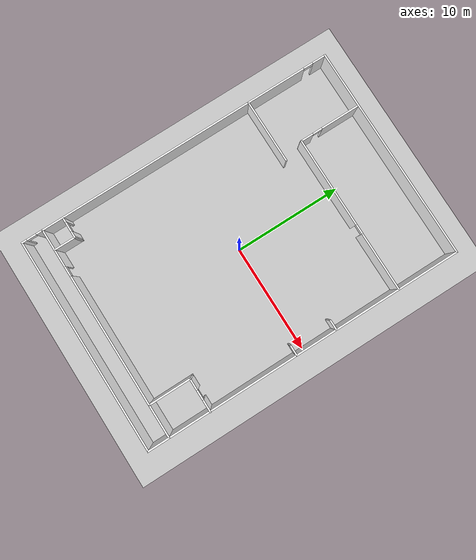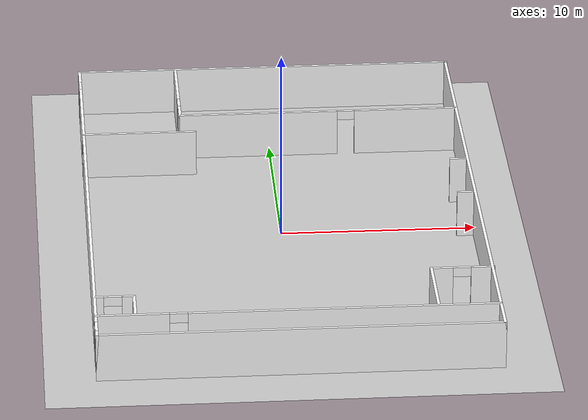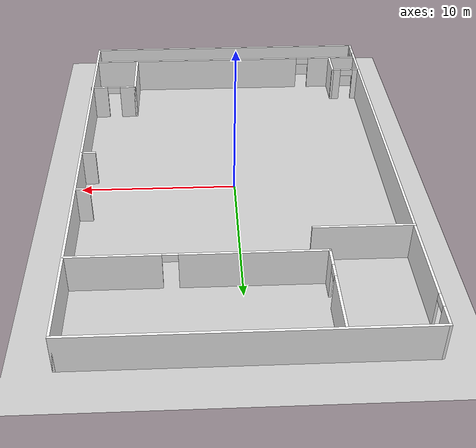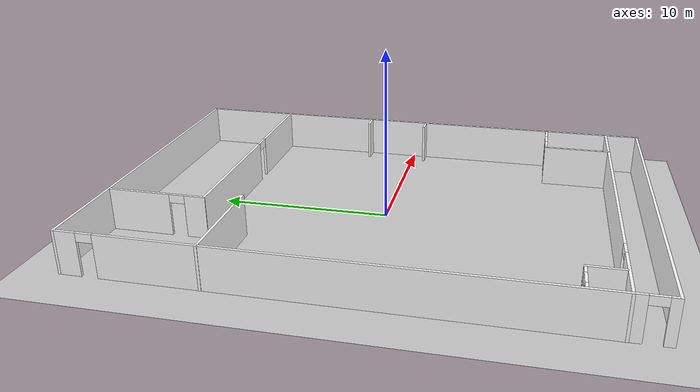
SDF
<?xml version="1.0"?>

<!-- 该模型用于测试 -->
<sdf version='1.11'>
  <world name='test'>

    <!-- 环境配置 -->
    <scene>
      <ambient>1 1 1 1</ambient>
      <background>0.800000012 0.800000012 0.800000012 1</background>
      <sky></sky>
      <shadows>true</shadows>
    </scene>
    <gravity>0 0 -9.8000000000000007</gravity>
    <magnetic_field>5.5644999999999998e-06 2.2875799999999999e-05 -4.2388400000000002e-05</magnetic_field>
    <atmosphere type='adiabatic'/>
    <physics type='ode'>
      <max_step_size>0.001</max_step_size>
      <real_time_factor>1</real_time_factor>
      <real_time_update_rate>1000</real_time_update_rate>
    </physics>

    <!-- 加载ground -->
    <include>
      <uri>model://ground_plane</uri>
      <name>ground_plane</name>
      <pose>0 0 0 0 0 0</pose>
    </include>

    <!-- 加载room模型 -->
    <include>
      <uri>model://room_1</uri>
      <name>room_1</name>
      <pose>0 0 0 0 0 0</pose>
    </include>

    <!-- 光源 -->
    <light name='sun' type='directional'>
      <pose>0 0 10 0 0 0</pose>
      <cast_shadows>true</cast_shadows>
      <intensity>1</intensity>
      <direction>-0.5 0.1 -0.9</direction>
      <diffuse>0.8 0.8 0.8 1</diffuse>
      <specular>0.2 0.2 0.2 1</specular>
      <attenuation>
        <range>1000</range>
        <linear>0.01</linear>
        <constant>0.90000000000000002</constant>
        <quadratic>0.001</quadratic>
      </attenuation>
    </light>

    <!-- 核心系统插件 -->
    <plugin filename="gz-sim-physics-system" name="gz::sim::systems::Physics">
    </plugin>

    <plugin filename="gz-sim-user-commands-system" name="gz::sim::systems::UserCommands">
    </plugin>

    <plugin filename="gz-sim-scene-broadcaster-system" name="gz::sim::systems::SceneBroadcaster">
    </plugin>

    <plugin filename="gz-sim-sensors-system" name="gz::sim::systems::Sensors">
      <render_engine>ogre2</render_engine>
    </plugin>

    <plugin filename="gz-sim-imu-system" name="gz::sim::systems::Imu">
    </plugin>

  </world>
</sdf>

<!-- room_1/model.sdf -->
<sdf version='1.11'>
  <model name='room_1'>
    <pose>-2.13091 0.288813 0 0 -0 0</pose>
    <link name='Wall_26'>
      <pose>-9.94011 0 0 0 -0 -1.5708</pose>
      <visual name='Wall_26_Visual_0'>
        <pose>-14.3351 0 1.25 0 -0 0</pose>
        <geometry>
          <box>
            <size>1.32984 0.15 2.5</size>
          </box>
        </geometry>
        <material>
          <ambient>1 1 1 1</ambient>
          <diffuse>1 1 1 1</diffuse>
          <specular>0.1 0.1 0.1 1</specular>
          <pbr>
            <metal>
              <albedo_map>/home/netlab/littletank/model/zyz_material/red_wall.png</albedo_map>
            </metal>
          </pbr>
        </material>
        <meta>
          <layer>0</layer>
        </meta>
      </visual>
      <collision name='Wall_26_Collision_0'>
        <geometry>
          <box>
            <size>1.32984 0.15 2.5</size>
          </box>
        </geometry>
        <pose>-14.3351 0 1.25 0 -0 0</pose>
      </collision>
      <visual name='Wall_26_Visual_1'>
        <pose>0.406322 0 1.25 0 -0 0</pose>
        <geometry>
          <box>
            <size>26.353 0.15 2.5</size>
          </box>
        </geometry>
        <material>
          <ambient>1 1 1 1</ambient>
          <diffuse>1 1 1 1</diffuse>
          <specular>0.1 0.1 0.1 1</specular>
          <pbr>
            <metal>
              <albedo_map>/home/netlab/littletank/model/zyz_material/red_wall.png</albedo_map>
            </metal>
          </pbr>
        </material>
        <meta>
          <layer>0</layer>
        </meta>
      </visual>
      <collision name='Wall_26_Collision_1'>
        <geometry>
          <box>
            <size>26.353 0.15 2.5</size>
          </box>
        </geometry>
        <pose>0.406322 0 1.25 0 -0 0</pose>
      </collision>
      <visual name='Wall_26_Visual_2'>
        <pose>14.7414 0 1.25 0 -0 0</pose>
        <geometry>
          <box>
            <size>0.517201 0.15 2.5</size>
          </box>
        </geometry>
        <material>
          <ambient>1 1 1 1</ambient>
          <diffuse>1 1 1 1</diffuse>
          <specular>0.1 0.1 0.1 1</specular>
          <pbr>
            <metal>
              <albedo_map>/home/netlab/littletank/model/zyz_material/red_wall.png</albedo_map>
            </metal>
          </pbr>
        </material>
        <meta>
          <layer>0</layer>
        </meta>
      </visual>
      <collision name='Wall_26_Collision_2'>
        <geometry>
          <box>
            <size>0.517201 0.15 2.5</size>
          </box>
        </geometry>
        <pose>14.7414 0 1.25 0 -0 0</pose>
      </collision>
      <visual name='Wall_26_Visual_3'>
        <pose>-13.2202 0 2.25 0 -0 0</pose>
        <geometry>
          <box>
            <size>0.9 0.15 0.5</size>
          </box>
        </geometry>
        <material>
          <ambient>1 1 1 1</ambient>
          <diffuse>1 1 1 1</diffuse>
          <specular>0.1 0.1 0.1 1</specular>
          <pbr>
            <metal>
              <albedo_map>/home/netlab/littletank/model/zyz_material/red_wall.png</albedo_map>
            </metal>
          </pbr>
        </material>
        <meta>
          <layer>0</layer>
        </meta>
      </visual>
      <collision name='Wall_26_Collision_3'>
        <geometry>
          <box>
            <size>0.9 0.15 0.5</size>
          </box>
        </geometry>
        <pose>-13.2202 0 2.25 0 -0 0</pose>
      </collision>
      <visual name='Wall_26_Visual_4'>
        <pose>14.0328 0 2.25 0 -0 0</pose>
        <geometry>
          <box>
            <size>0.9 0.15 0.5</size>
          </box>
        </geometry>
        <material>
          <ambient>1 1 1 1</ambient>
          <diffuse>1 1 1 1</diffuse>
          <specular>0.1 0.1 0.1 1</specular>
          <pbr>
            <metal>
              <albedo_map>/home/netlab/littletank/model/zyz_material/red_wall.png</albedo_map>
            </metal>
          </pbr>
        </material>
        <meta>
          <layer>0</layer>
        </meta>
      </visual>
      <collision name='Wall_26_Collision_4'>
        <geometry>
          <box>
            <size>0.9 0.15 0.5</size>
          </box>
        </geometry>
        <pose>14.0328 0 2.25 0 -0 0</pose>
      </collision>
    </link>
    <link name='Wall_28'>
      <collision name='Wall_28_Collision'>
        <geometry>
          <box>
            <size>20 0.15 2.5</size>
          </box>
        </geometry>
        <pose>0 0 1.25 0 -0 0</pose>
      </collision>
      <visual name='Wall_28_Visual'>
        <pose>0 0 1.25 0 -0 0</pose>
        <geometry>
          <box>
            <size>20 0.15 2.5</size>
          </box>
        </geometry>
        <material>
          <ambient>1 1 1 1</ambient>
          <diffuse>1 1 1 1</diffuse>
          <specular>0.1 0.1 0.1 1</specular>
          <pbr>
            <metal>
              <albedo_map>/home/netlab/littletank/model/zyz_material/red_wall.png</albedo_map>
            </metal>
          </pbr>
        </material>
        <meta>
          <layer>0</layer>
        </meta>
      </visual>
      <pose>-0.015112 -14.925 0 0 -0 0</pose>
    </link>
    <link name='Wall_30'>
      <collision name='Wall_30_Collision'>
        <geometry>
          <box>
            <size>20 0.15 2.5</size>
          </box>
        </geometry>
        <pose>0 0 1.25 0 -0 0</pose>
      </collision>
      <visual name='Wall_30_Visual'>
        <pose>0 0 1.25 0 -0 0</pose>
        <geometry>
          <box>
            <size>20 0.15 2.5</size>
          </box>
        </geometry>
        <material>
          <ambient>1 1 1 1</ambient>
          <diffuse>1 1 1 1</diffuse>
          <specular>0.1 0.1 0.1 1</specular>
          <pbr>
            <metal>
              <albedo_map>/home/netlab/littletank/model/zyz_material/red_wall.png</albedo_map>
            </metal>
          </pbr>
        </material>
        <meta>
          <layer>0</layer>
        </meta>
      </visual>
      <pose>-0.015112 14.925 0 0 -0 0</pose>
    </link>
    <link name='Wall_32'>
      <collision name='Wall_32_Collision'>
        <geometry>
          <box>
            <size>30 0.15 2.5</size>
          </box>
        </geometry>
        <pose>0 0 1.25 0 -0 0</pose>
      </collision>
      <visual name='Wall_32_Visual'>
        <pose>0 0 1.25 0 -0 0</pose>
        <geometry>
          <box>
            <size>30 0.15 2.5</size>
          </box>
        </geometry>
        <material>
          <ambient>1 1 1 1</ambient>
          <diffuse>1 1 1 1</diffuse>
          <specular>0.1 0.1 0.1 1</specular>
          <pbr>
            <metal>
              <albedo_map>/home/netlab/littletank/model/zyz_material/red_wall.png</albedo_map>
            </metal>
          </pbr>
        </material>
        <meta>
          <layer>0</layer>
        </meta>
      </visual>
      <pose>9.90989 0 0 0 -0 1.5708</pose>
    </link>
    <link name='Wall_34'>
      <pose>2.56186 9.19197 0 0 -0 3.14159</pose>
      <visual name='Wall_34_Visual_0'>
        <pose>-4.65024 0 1.25 0 -0 0</pose>
        <geometry>
          <box>
            <size>5.44952 0.15 2.5</size>
          </box>
        </geometry>
        <material>
          <ambient>1 1 1 1</ambient>
          <diffuse>1 1 1 1</diffuse>
          <specular>0.1 0.1 0.1 1</specular>
          <pbr>
            <metal>
              <albedo_map>/home/netlab/littletank/model/zyz_material/red_wall.png</albedo_map>
            </metal>
          </pbr>
        </material>
        <meta>
          <layer>0</layer>
        </meta>
      </visual>
      <collision name='Wall_34_Collision_0'>
        <geometry>
          <box>
            <size>5.44952 0.15 2.5</size>
          </box>
        </geometry>
        <pose>-4.65024 0 1.25 0 -0 0</pose>
      </collision>
      <visual name='Wall_34_Visual_1'>
        <pose>3.17476 0 1.25 0 -0 0</pose>
        <geometry>
          <box>
            <size>8.40048 0.15 2.5</size>
          </box>
        </geometry>
        <material>
          <ambient>1 1 1 1</ambient>
          <diffuse>1 1 1 1</diffuse>
          <specular>0.1 0.1 0.1 1</specular>
          <pbr>
            <metal>
              <albedo_map>/home/netlab/littletank/model/zyz_material/red_wall.png</albedo_map>
            </metal>
          </pbr>
        </material>
        <meta>
          <layer>0</layer>
        </meta>
      </visual>
      <collision name='Wall_34_Collision_1'>
        <geometry>
          <box>
            <size>8.40048 0.15 2.5</size>
          </box>
        </geometry>
        <pose>3.17476 0 1.25 0 -0 0</pose>
      </collision>
      <visual name='Wall_34_Visual_2'>
        <pose>-1.47548 0 2.25 0 -0 0</pose>
        <geometry>
          <box>
            <size>0.9 0.15 0.5</size>
          </box>
        </geometry>
        <material>
          <ambient>1 1 1 1</ambient>
          <diffuse>1 1 1 1</diffuse>
          <specular>0.1 0.1 0.1 1</specular>
          <pbr>
            <metal>
              <albedo_map>/home/netlab/littletank/model/zyz_material/red_wall.png</albedo_map>
            </metal>
          </pbr>
        </material>
        <meta>
          <layer>0</layer>
        </meta>
      </visual>
      <collision name='Wall_34_Collision_2'>
        <geometry>
          <box>
            <size>0.9 0.15 0.5</size>
          </box>
        </geometry>
        <pose>-1.47548 0 2.25 0 -0 0</pose>
      </collision>
    </link>
    <link name='Wall_36'>
      <pose>-4.77332 11.992 0 0 -0 1.5708</pose>
      <visual name='Wall_36_Visual_0'>
        <pose>-2.26207 0 1.25 0 -0 0</pose>
        <geometry>
          <box>
            <size>1.22585 0.15 2.5</size>
          </box>
        </geometry>
        <material>
          <ambient>1 1 1 1</ambient>
          <diffuse>1 1 1 1</diffuse>
          <specular>0.1 0.1 0.1 1</specular>
          <pbr>
            <metal>
              <albedo_map>/home/netlab/littletank/model/zyz_material/red_wall.png</albedo_map>
            </metal>
          </pbr>
        </material>
        <meta>
          <layer>0</layer>
        </meta>
      </visual>
      <collision name='Wall_36_Collision_0'>
        <geometry>
          <box>
            <size>1.22585 0.15 2.5</size>
          </box>
        </geometry>
        <pose>-2.26207 0 1.25 0 -0 0</pose>
      </collision>
      <visual name='Wall_36_Visual_1'>
        <pose>1.06292 0 1.25 0 -0 0</pose>
        <geometry>
          <box>
            <size>3.62415 0.15 2.5</size>
          </box>
        </geometry>
        <material>
          <ambient>1 1 1 1</ambient>
          <diffuse>1 1 1 1</diffuse>
          <specular>0.1 0.1 0.1 1</specular>
          <pbr>
            <metal>
              <albedo_map>/home/netlab/littletank/model/zyz_material/red_wall.png</albedo_map>
            </metal>
          </pbr>
        </material>
        <meta>
          <layer>0</layer>
        </meta>
      </visual>
      <collision name='Wall_36_Collision_1'>
        <geometry>
          <box>
            <size>3.62415 0.15 2.5</size>
          </box>
        </geometry>
        <pose>1.06292 0 1.25 0 -0 0</pose>
      </collision>
      <visual name='Wall_36_Visual_2'>
        <pose>-1.19915 0 2.25 0 -0 0</pose>
        <geometry>
          <box>
            <size>0.9 0.15 0.5</size>
          </box>
        </geometry>
        <material>
          <ambient>1 1 1 1</ambient>
          <diffuse>1 1 1 1</diffuse>
          <specular>0.1 0.1 0.1 1</specular>
          <pbr>
            <metal>
              <albedo_map>/home/netlab/littletank/model/zyz_material/red_wall.png</albedo_map>
            </metal>
          </pbr>
        </material>
        <meta>
          <layer>0</layer>
        </meta>
      </visual>
      <collision name='Wall_36_Collision_2'>
        <geometry>
          <box>
            <size>0.9 0.15 0.5</size>
          </box>
        </geometry>
        <pose>-1.19915 0 2.25 0 -0 0</pose>
      </collision>
    </link>
    <link name='Wall_38'>
      <collision name='Wall_38_Collision'>
        <geometry>
          <box>
            <size>2 0.15 2.5</size>
          </box>
        </geometry>
        <pose>0 0 1.25 0 -0 0</pose>
      </collision>
      <visual name='Wall_38_Visual'>
        <pose>0 0 1.25 0 -0 0</pose>
        <geometry>
          <box>
            <size>2 0.15 2.5</size>
          </box>
        </geometry>
        <material>
          <ambient>1 1 1 1</ambient>
          <diffuse>1 1 1 1</diffuse>
          <specular>0.1 0.1 0.1 1</specular>
          <pbr>
            <metal>
              <albedo_map>/home/netlab/littletank/model/zyz_material/grey_wall.png</albedo_map>
            </metal>
          </pbr>
        </material>
        <meta>
          <layer>0</layer>
        </meta>
      </visual>
      <pose>-7.99563 -11.9358 0 0 -0 1.5708</pose>
    </link>
    <link name='Wall_40'>
      <pose>-0.031192 -12.9552 0 0 -0 0</pose>
      <visual name='Wall_40_Visual_0'>
        <pose>-8.15511 0 1.25 0 -0 0</pose>
        <geometry>
          <box>
            <size>3.68977 0.15 2.5</size>
          </box>
        </geometry>
        <material>
          <ambient>1 1 1 1</ambient>
          <diffuse>1 1 1 1</diffuse>
          <specular>0.1 0.1 0.1 1</specular>
          <pbr>
            <metal>
              <albedo_map>/home/netlab/littletank/model/zyz_material/red_wall.png</albedo_map>
            </metal>
          </pbr>
        </material>
        <meta>
          <layer>0</layer>
        </meta>
      </visual>
      <collision name='Wall_40_Collision_0'>
        <geometry>
          <box>
            <size>3.68977 0.15 2.5</size>
          </box>
        </geometry>
        <pose>-8.15511 0 1.25 0 -0 0</pose>
      </collision>
      <visual name='Wall_40_Visual_1'>
        <pose>2.29489 0 1.25 0 -0 0</pose>
        <geometry>
          <box>
            <size>15.4102 0.15 2.5</size>
          </box>
        </geometry>
        <material>
          <ambient>1 1 1 1</ambient>
          <diffuse>1 1 1 1</diffuse>
          <specular>0.1 0.1 0.1 1</specular>
          <pbr>
            <metal>
              <albedo_map>/home/netlab/littletank/model/zyz_material/red_wall.png</albedo_map>
            </metal>
          </pbr>
        </material>
        <meta>
          <layer>0</layer>
        </meta>
      </visual>
      <collision name='Wall_40_Collision_1'>
        <geometry>
          <box>
            <size>15.4102 0.15 2.5</size>
          </box>
        </geometry>
        <pose>2.29489 0 1.25 0 -0 0</pose>
      </collision>
      <visual name='Wall_40_Visual_2'>
        <pose>-5.86023 0 2.25 0 -0 0</pose>
        <geometry>
          <box>
            <size>0.9 0.15 0.5</size>
          </box>
        </geometry>
        <material>
          <ambient>1 1 1 1</ambient>
          <diffuse>1 1 1 1</diffuse>
          <specular>0.1 0.1 0.1 1</specular>
          <pbr>
            <metal>
              <albedo_map>/home/netlab/littletank/model/zyz_material/red_wall.png</albedo_map>
            </metal>
          </pbr>
        </material>
        <meta>
          <layer>0</layer>
        </meta>
      </visual>
      <collision name='Wall_40_Collision_2'>
        <geometry>
          <box>
            <size>0.9 0.15 0.5</size>
          </box>
        </geometry>
        <pose>-5.86023 0 2.25 0 -0 0</pose>
      </collision>
    </link>
    <link name='Wall_42'>
      <pose>-8.92063 -11.0108 0 0 -0 3.14159</pose>
      <visual name='Wall_42_Visual_0'>
        <pose>-0.665755 0 1.25 0 -0 0</pose>
        <geometry>
          <box>
            <size>0.668489 0.15 2.5</size>
          </box>
        </geometry>
        <material>
          <ambient>1 1 1 1</ambient>
          <diffuse>1 1 1 1</diffuse>
          <specular>0.1 0.1 0.1 1</specular>
          <pbr>
            <metal>
              <albedo_map>/home/netlab/littletank/model/zyz_material/grey_wall.png</albedo_map>
            </metal>
          </pbr>
        </material>
        <meta>
          <layer>0</layer>
        </meta>
      </visual>
      <collision name='Wall_42_Collision_0'>
        <geometry>
          <box>
            <size>0.668489 0.15 2.5</size>
          </box>
        </geometry>
        <pose>-0.665755 0 1.25 0 -0 0</pose>
      </collision>
      <visual name='Wall_42_Visual_1'>
        <pose>0.784245 0 1.25 0 -0 0</pose>
        <geometry>
          <box>
            <size>0.431511 0.15 2.5</size>
          </box>
        </geometry>
        <material>
          <ambient>1 1 1 1</ambient>
          <diffuse>1 1 1 1</diffuse>
          <specular>0.1 0.1 0.1 1</specular>
          <pbr>
            <metal>
              <albedo_map>/home/netlab/littletank/model/zyz_material/grey_wall.png</albedo_map>
            </metal>
          </pbr>
        </material>
        <meta>
          <layer>0</layer>
        </meta>
      </visual>
      <collision name='Wall_42_Collision_1'>
        <geometry>
          <box>
            <size>0.431511 0.15 2.5</size>
          </box>
        </geometry>
        <pose>0.784245 0 1.25 0 -0 0</pose>
      </collision>
      <visual name='Wall_42_Visual_2'>
        <pose>0.118489 0 2.25 0 -0 0</pose>
        <geometry>
          <box>
            <size>0.9 0.15 0.5</size>
          </box>
        </geometry>
        <material>
          <ambient>1 1 1 1</ambient>
          <diffuse>1 1 1 1</diffuse>
          <specular>0.1 0.1 0.1 1</specular>
          <pbr>
            <metal>
              <albedo_map>/home/netlab/littletank/model/zyz_material/grey_wall.png</albedo_map>
            </metal>
          </pbr>
        </material>
        <meta>
          <layer>0</layer>
        </meta>
      </visual>
      <collision name='Wall_42_Collision_2'>
        <geometry>
          <box>
            <size>0.9 0.15 0.5</size>
          </box>
        </geometry>
        <pose>0.118489 0 2.25 0 -0 0</pose>
      </collision>
    </link>
    <link name='Wall_46'>
      <collision name='Wall_46_Collision'>
        <geometry>
          <box>
            <size>4 0.15 2.5</size>
          </box>
        </geometry>
        <pose>0 0 1.25 0 -0 0</pose>
      </collision>
      <visual name='Wall_46_Visual'>
        <pose>0 0 1.25 0 -0 0</pose>
        <geometry>
          <box>
            <size>4 0.15 2.5</size>
          </box>
        </geometry>
        <material>
          <ambient>1 1 1 1</ambient>
          <diffuse>1 1 1 1</diffuse>
          <specular>0.1 0.1 0.1 1</specular>
          <pbr>
            <metal>
              <albedo_map>/home/netlab/littletank/model/zyz_material/brick_wall.png</albedo_map>
            </metal>
          </pbr>
        </material>
        <meta>
          <layer>0</layer>
        </meta>
      </visual>
      <pose>6.85619 -11.0034 0 0 -0 1.5708</pose>
    </link>
    <link name='Wall_48'>
      <collision name='Wall_48_Collision'>
        <geometry>
          <box>
            <size>1 0.15 2.5</size>
          </box>
        </geometry>
        <pose>0 0 1.25 0 -0 0</pose>
      </collision>
      <visual name='Wall_48_Visual'>
        <pose>0 0 1.25 0 -0 0</pose>
        <geometry>
          <box>
            <size>1 0.15 2.5</size>
          </box>
        </geometry>
        <material>
          <ambient>1 1 1 1</ambient>
          <diffuse>1 1 1 1</diffuse>
          <specular>0.1 0.1 0.1 1</specular>
          <pbr>
            <metal>
              <albedo_map>/home/netlab/littletank/model/zyz_material/grey_wall.png</albedo_map>
            </metal>
          </pbr>
        </material>
        <meta>
          <layer>0</layer>
        </meta>
      </visual>
      <pose>9.48123 3.07607 0 0 -0 3.14159</pose>
    </link>
    <link name='Wall_52'>
      <collision name='Wall_52_Collision'>
        <geometry>
          <box>
            <size>1 0.15 2.5</size>
          </box>
        </geometry>
        <pose>0 0 1.25 0 -0 0</pose>
      </collision>
      <visual name='Wall_52_Visual'>
        <pose>0 0 1.25 0 -0 0</pose>
        <geometry>
          <box>
            <size>1 0.15 2.5</size>
          </box>
        </geometry>
        <material>
          <ambient>1 1 1 1</ambient>
          <diffuse>1 1 1 1</diffuse>
          <specular>0.1 0.1 0.1 1</specular>
          <pbr>
            <metal>
              <albedo_map>/home/netlab/littletank/model/zyz_material/grey_wall.png</albedo_map>
            </metal>
          </pbr>
        </material>
        <meta>
          <layer>0</layer>
        </meta>
      </visual>
      <pose>9.48123 -0.773925 0 0 -0 0</pose>
    </link>
    <link name='Wall_54'>
      <pose>8.40619 -9.0784 0 0 -0 0</pose>
      <visual name='Wall_54_Visual_0'>
        <pose>-1.04502 0 1.25 0 -0 0</pose>
        <geometry>
          <box>
            <size>1.15997 0.15 2.5</size>
          </box>
        </geometry>
        <material>
          <ambient>1 1 1 1</ambient>
          <diffuse>1 1 1 1</diffuse>
          <specular>0.1 0.1 0.1 1</specular>
          <pbr>
            <metal>
              <albedo_map>/home/netlab/littletank/model/zyz_material/brick_wall.png</albedo_map>
            </metal>
          </pbr>
        </material>
        <meta>
          <layer>0</layer>
        </meta>
      </visual>
      <collision name='Wall_54_Collision_0'>
        <geometry>
          <box>
            <size>1.15997 0.15 2.5</size>
          </box>
        </geometry>
        <pose>-1.04502 0 1.25 0 -0 0</pose>
      </collision>
      <visual name='Wall_54_Visual_1'>
        <pose>1.02998 0 1.25 0 -0 0</pose>
        <geometry>
          <box>
            <size>1.19003 0.15 2.5</size>
          </box>
        </geometry>
        <material>
          <ambient>1 1 1 1</ambient>
          <diffuse>1 1 1 1</diffuse>
          <specular>0.1 0.1 0.1 1</specular>
          <pbr>
            <metal>
              <albedo_map>/home/netlab/littletank/model/zyz_material/brick_wall.png</albedo_map>
            </metal>
          </pbr>
        </material>
        <meta>
          <layer>0</layer>
        </meta>
      </visual>
      <collision name='Wall_54_Collision_1'>
        <geometry>
          <box>
            <size>1.19003 0.15 2.5</size>
          </box>
        </geometry>
        <pose>1.02998 0 1.25 0 -0 0</pose>
      </collision>
      <visual name='Wall_54_Visual_2'>
        <pose>-0.015034 0 2.25 0 -0 0</pose>
        <geometry>
          <box>
            <size>0.9 0.15 0.5</size>
          </box>
        </geometry>
        <material>
          <ambient>1 1 1 1</ambient>
          <diffuse>1 1 1 1</diffuse>
          <specular>0.1 0.1 0.1 1</specular>
          <pbr>
            <metal>
              <albedo_map>/home/netlab/littletank/model/zyz_material/brick_wall.png</albedo_map>
            </metal>
          </pbr>
        </material>
        <meta>
          <layer>0</layer>
        </meta>
      </visual>
      <collision name='Wall_54_Collision_2'>
        <geometry>
          <box>
            <size>0.9 0.15 0.5</size>
          </box>
        </geometry>
        <pose>-0.015034 0 2.25 0 -0 0</pose>
      </collision>
    </link>
    <link name='Wall_56'>
      <collision name='Wall_56_Collision'>
        <geometry>
          <box>
            <size>6 0.15 2.5</size>
          </box>
        </geometry>
        <pose>0 0 1.25 0 -0 0</pose>
      </collision>
      <visual name='Wall_56_Visual'>
        <pose>0 0 1.25 0 -0 0</pose>
        <geometry>
          <box>
            <size>6 0.15 2.5</size>
          </box>
        </geometry>
        <material>
          <ambient>1 1 1 1</ambient>
          <diffuse>1 1 1 1</diffuse>
          <specular>0.1 0.1 0.1 1</specular>
          <pbr>
            <metal>
              <albedo_map>/home/netlab/littletank/model/zyz_material/orange_wall.png</albedo_map>
            </metal>
          </pbr>
        </material>
        <meta>
          <layer>0</layer>
        </meta>
      </visual>
      <pose>-7.02897 7.22513 0 0 -0 0</pose>
    </link>
    <static>1</static>
  </model>
</sdf>
